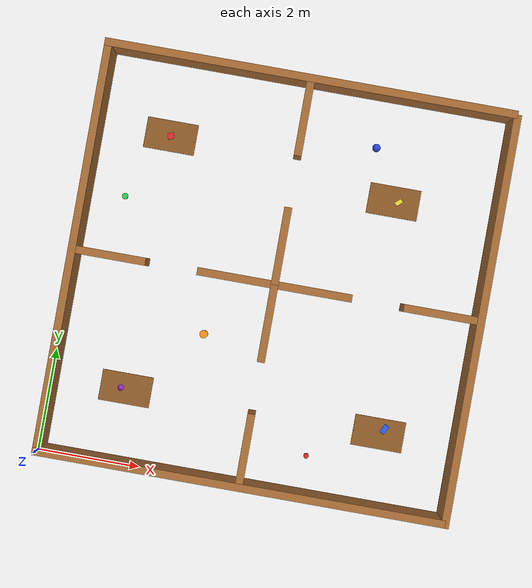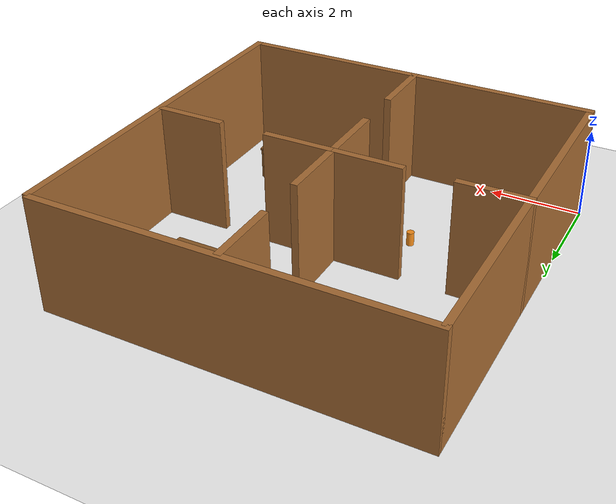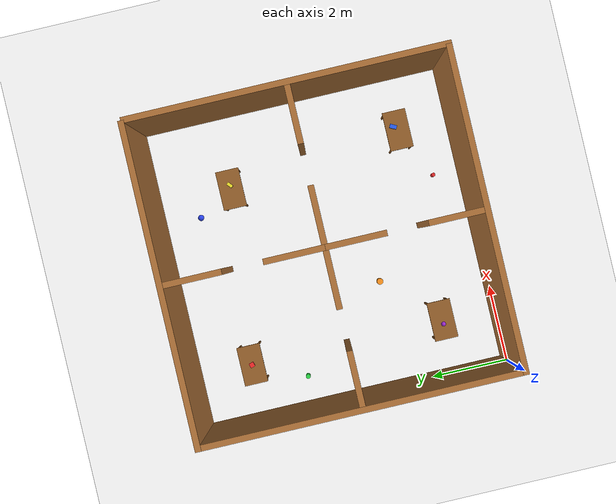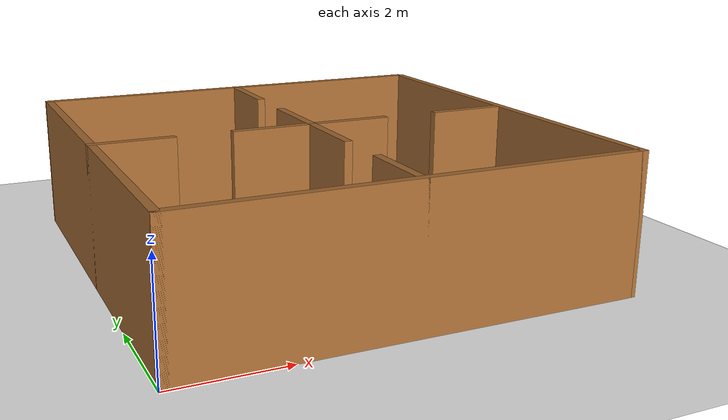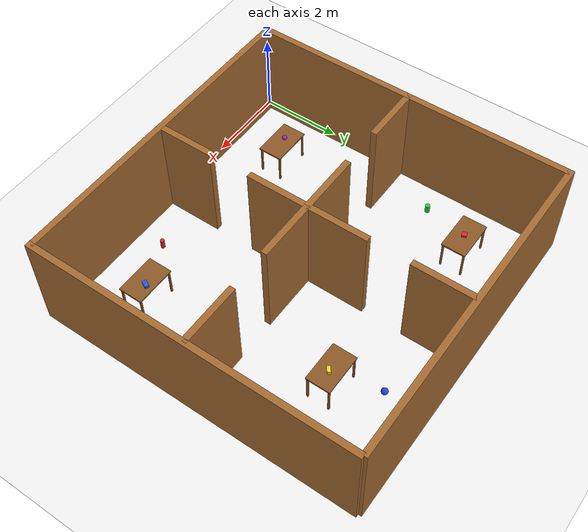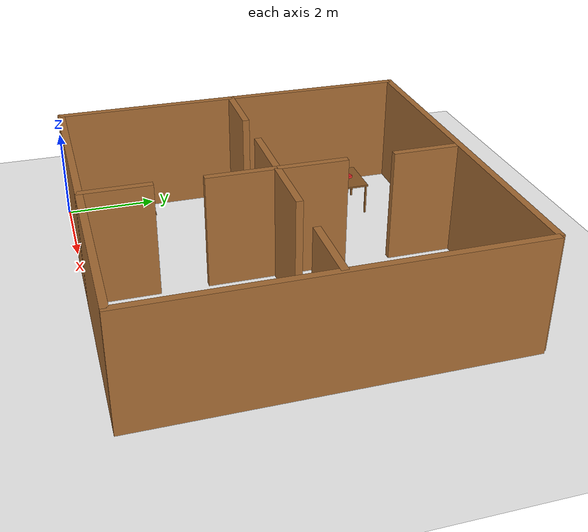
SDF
<?xml version="1.0" ?>
<sdf version="1.9">
  <world name="four_rooms">
    plugin filename="gz-sim-physics-system"
            name="gz::sim::systems::Physics"/>
    <plugin filename="gz-sim-sensors-system"
            name="gz::sim::systems::Sensors">
      <render_engine>ogre2</render_engine>
    </plugin>
    <plugin filename="gz-sim-scene-broadcaster-system"
            name="gz::sim::systems::SceneBroadcaster"/>
    <plugin filename="gz-sim-user-commands-system"
            name="gz::sim::systems::UserCommands"/>
    <!-- Physics -->
    <physics type="ode">
      <max_step_size>0.001</max_step_size>
      <real_time_factor>1.0</real_time_factor>
    </physics>

    <!-- Lighting -->
    <light type="directional" name="sun">
      <cast_shadows>true</cast_shadows>
      <pose>0 0 10 0 0 0</pose>
      <diffuse>0.8 0.8 0.8 1</diffuse>
      <direction>-0.5 0.1 -0.9</direction>
    </light>

    <!-- Ground plane -->
    <model name="ground_plane">
      <static>true</static>
      <link name="link">
        <collision name="collision">
          <geometry><plane><normal>0 0 1</normal></plane></geometry>
        </collision>
        <visual name="visual">
          <geometry><plane><normal>0 0 1</normal><size>100 100</size></plane></geometry>
          <material>
            <ambient>0.9 0.9 0.9 1</ambient>
            <diffuse>0.95 0.95 0.95 1</diffuse>
          </material>
        </visual>
      </link>
    </model>

    <!-- ==================== OUTER WALLS ==================== -->

    <model name="wall_north">
      <static>true</static>
      <pose>4 8 1.25 0 0 0</pose>
      <link name="link">
        <collision name="collision">
          <geometry><box><size>8 0.15 2.5</size></box></geometry>
        </collision>
        <visual name="visual">
          <geometry><box><size>8 0.15 2.5</size></box></geometry>
          <material>
            <ambient>0.55 0.35 0.17 1</ambient>
            <diffuse>0.65 0.42 0.20 1</diffuse>
            <specular>0.1 0.1 0.1 1</specular>
          </material>
        </visual>
      </link>
    </model>

    <model name="wall_south">
      <static>true</static>
      <pose>4 0.075 1.25 0 0 0</pose>
      <link name="link">
        <collision name="collision">
          <geometry><box><size>8 0.15 2.5</size></box></geometry>
        </collision>
        <visual name="visual">
          <geometry><box><size>8 0.15 2.5</size></box></geometry>
          <material>
            <ambient>0.55 0.35 0.17 1</ambient>
            <diffuse>0.65 0.42 0.20 1</diffuse>
            <specular>0.1 0.1 0.1 1</specular>
          </material>
        </visual>
      </link>
    </model>

    <model name="wall_west">
      <static>true</static>
      <pose>0.075 4 1.25 0 0 0</pose>
      <link name="link">
        <collision name="collision">
          <geometry><box><size>0.15 8 2.5</size></box></geometry>
        </collision>
        <visual name="visual">
          <geometry><box><size>0.15 8 2.5</size></box></geometry>
          <material>
            <ambient>0.55 0.35 0.17 1</ambient>
            <diffuse>0.65 0.42 0.20 1</diffuse>
            <specular>0.1 0.1 0.1 1</specular>
          </material>
        </visual>
      </link>
    </model>

    <model name="wall_east">
      <static>true</static>
      <pose>8 4 1.25 0 0 0</pose>
      <link name="link">
        <collision name="collision">
          <geometry><box><size>0.15 8 2.5</size></box></geometry>
        </collision>
        <visual name="visual">
          <geometry><box><size>0.15 8 2.5</size></box></geometry>
          <material>
            <ambient>0.55 0.35 0.17 1</ambient>
            <diffuse>0.65 0.42 0.20 1</diffuse>
            <specular>0.1 0.1 0.1 1</specular>
          </material>
        </visual>
      </link>
    </model>

    <!-- ==================== INTERIOR WALLS ==================== -->
    <!-- Vertical divider at X=4: doorways at Y=1.5-2.5 and Y=5.5-6.5 -->

    <model name="wall_room_3_4_lower">
      <static>true</static>
      <pose>4 0.75 1.25 0 0 0</pose>
      <link name="link">
        <collision name="collision">
          <geometry><box><size>0.15 1.5 2.5</size></box></geometry>
        </collision>
        <visual name="visual">
          <geometry><box><size>0.15 1.5 2.5</size></box></geometry>
          <material>
            <ambient>0.55 0.35 0.17 1</ambient>
            <diffuse>0.65 0.42 0.20 1</diffuse>
            <specular>0.1 0.1 0.1 1</specular>
          </material>
        </visual>
      </link>
    </model>

    <model name="wall_room_3_4_upper">
      <static>true</static>
      <pose>4 3.25 1.25 0 0 0</pose>
      <link name="link">
        <collision name="collision">
          <geometry><box><size>0.15 1.5 2.5</size></box></geometry>
        </collision>
        <visual name="visual">
          <geometry><box><size>0.15 1.5 2.5</size></box></geometry>
          <material>
            <ambient>0.55 0.35 0.17 1</ambient>
            <diffuse>0.65 0.42 0.20 1</diffuse>
            <specular>0.1 0.1 0.1 1</specular>
          </material>
        </visual>
      </link>
    </model>

    <model name="wall_room_1_2_lower">
      <static>true</static>
      <pose>4 4.75 1.25 0 0 0</pose>
      <link name="link">
        <collision name="collision">
          <geometry><box><size>0.15 1.5 2.5</size></box></geometry>
        </collision>
        <visual name="visual">
          <geometry><box><size>0.15 1.5 2.5</size></box></geometry>
          <material>
            <ambient>0.55 0.35 0.17 1</ambient>
            <diffuse>0.65 0.42 0.20 1</diffuse>
            <specular>0.1 0.1 0.1 1</specular>
          </material>
        </visual>
      </link>
    </model>

    <model name="wall_room_1_2_upper">
      <static>true</static>
      <pose>4 7.25 1.25 0 0 0</pose>
      <link name="link">
        <collision name="collision">
          <geometry><box><size>0.15 1.5 2.5</size></box></geometry>
        </collision>
        <visual name="visual">
          <geometry><box><size>0.15 1.5 2.5</size></box></geometry>
          <material>
            <ambient>0.55 0.35 0.17 1</ambient>
            <diffuse>0.65 0.42 0.20 1</diffuse>
            <specular>0.1 0.1 0.1 1</specular>
          </material>
        </visual>
      </link>
    </model>

    <!-- Horizontal divider at Y=4: doorways at X=1.5-2.5 and X=5.5-6.5 -->

    <model name="wall_room_1_3_left">
      <static>true</static>
      <pose>0.75 4 1.25 0 0 0</pose>
      <link name="link">
        <collision name="collision">
          <geometry><box><size>1.5 0.15 2.5</size></box></geometry>
        </collision>
        <visual name="visual">
          <geometry><box><size>1.5 0.15 2.5</size></box></geometry>
          <material>
            <ambient>0.55 0.35 0.17 1</ambient>
            <diffuse>0.65 0.42 0.20 1</diffuse>
            <specular>0.1 0.1 0.1 1</specular>
          </material>
        </visual>
      </link>
    </model>

    <model name="wall_room_1_3_right">
      <static>true</static>
      <pose>3.25 4 1.25 0 0 0</pose>
      <link name="link">
        <collision name="collision">
          <geometry><box><size>1.5 0.15 2.5</size></box></geometry>
        </collision>
        <visual name="visual">
          <geometry><box><size>1.5 0.15 2.5</size></box></geometry>
          <material>
            <ambient>0.55 0.35 0.17 1</ambient>
            <diffuse>0.65 0.42 0.20 1</diffuse>
            <specular>0.1 0.1 0.1 1</specular>
          </material>
        </visual>
      </link>
    </model>

    <model name="wall_room_2_4_left">
      <static>true</static>
      <pose>4.75 4 1.25 0 0 0</pose>
      <link name="link">
        <collision name="collision">
          <geometry><box><size>1.5 0.15 2.5</size></box></geometry>
        </collision>
        <visual name="visual">
          <geometry><box><size>1.5 0.15 2.5</size></box></geometry>
          <material>
            <ambient>0.55 0.35 0.17 1</ambient>
            <diffuse>0.65 0.42 0.20 1</diffuse>
            <specular>0.1 0.1 0.1 1</specular>
          </material>
        </visual>
      </link>
    </model>

    <model name="wall_room_2_4_right">
      <static>true</static>
      <pose>7.25 4 1.25 0 0 0</pose>
      <link name="link">
        <collision name="collision">
          <geometry><box><size>1.5 0.15 2.5</size></box></geometry>
        </collision>
        <visual name="visual">
          <geometry><box><size>1.5 0.15 2.5</size></box></geometry>
          <material>
            <ambient>0.55 0.35 0.17 1</ambient>
            <diffuse>0.65 0.42 0.20 1</diffuse>
            <specular>0.1 0.1 0.1 1</specular>
          </material>
        </visual>
      </link>
    </model>

    <!-- ==================== TABLES (one per room) ==================== -->

    <!-- Room 1 (top-left): center ~(1.5, 6.5) -->
    <include>
      <uri>model://table</uri>
      <name>table_room1</name>
      <pose>1.5 6.5 0 0 0 0</pose>
    </include>

    <!-- Room 2 (top-right): center ~(6.0, 6.0) -->
    <include>
      <uri>model://table</uri>
      <name>table_room2</name>
      <pose>6.0 6.0 0 0 0 0</pose>
    </include>

    <!-- Room 3 (bottom-left): center ~(1.5, 1.5) -->
    <include>
      <uri>model://table</uri>
      <name>table_room3</name>
      <pose>1.5 1.5 0 0 0 0</pose>
    </include>

    <!-- Room 4 (bottom-right): center ~(6.5, 1.5) -->
    <include>
      <uri>model://table</uri>
      <name>table_room4</name>
      <pose>6.5 1.5 0 0 0 0</pose>
    </include>

    <!-- ==================== RANDOM OBJECTS ==================== -->

    <!-- Room 1: red box on table -->
    <model name="obj_box_r1">
      <static>true</static>
      <pose>1.5 6.5 0.76 0 0 0.3</pose>
      <link name="link">
        <collision name="collision">
          <geometry><box><size>0.12 0.12 0.08</size></box></geometry>
        </collision>
        <visual name="visual">
          <geometry><box><size>0.12 0.12 0.08</size></box></geometry>
          <material>
            <ambient>0.8 0.1 0.1 1</ambient>
            <diffuse>0.9 0.15 0.15 1</diffuse>
          </material>
        </visual>
      </link>
    </model>

    <!-- Room 1: green cylinder on floor -->
    <model name="obj_cyl_r1">
      <static>true</static>
      <pose>0.8 5.2 0.1 0 0 0</pose>
      <link name="link">
        <collision name="collision">
          <geometry><cylinder><radius>0.06</radius><length>0.2</length></cylinder></geometry>
        </collision>
        <visual name="visual">
          <geometry><cylinder><radius>0.06</radius><length>0.2</length></cylinder></geometry>
          <material>
            <ambient>0.1 0.7 0.2 1</ambient>
            <diffuse>0.15 0.8 0.25 1</diffuse>
          </material>
        </visual>
      </link>
    </model>

    <!-- Room 2: blue sphere on floor -->
    <model name="obj_sphere_r2">
      <static>true</static>
      <pose>5.5 7.0 0.08 0 0 0</pose>
      <link name="link">
        <collision name="collision">
          <geometry><sphere><radius>0.08</radius></sphere></geometry>
        </collision>
        <visual name="visual">
          <geometry><sphere><radius>0.08</radius></sphere></geometry>
          <material>
            <ambient>0.1 0.2 0.8 1</ambient>
            <diffuse>0.15 0.25 0.9 1</diffuse>
          </material>
        </visual>
      </link>
    </model>

    <!-- Room 2: yellow box on table -->
    <model name="obj_box_r2">
      <static>true</static>
      <pose>6.1 6.0 0.78 0 0 0.7</pose>
      <link name="link">
        <collision name="collision">
          <geometry><box><size>0.15 0.08 0.1</size></box></geometry>
        </collision>
        <visual name="visual">
          <geometry><box><size>0.15 0.08 0.1</size></box></geometry>
          <material>
            <ambient>0.8 0.75 0.1 1</ambient>
            <diffuse>0.9 0.85 0.15 1</diffuse>
          </material>
        </visual>
      </link>
    </model>

    <!-- Room 3: orange cylinder on floor -->
    <model name="obj_cyl_r3">
      <static>true</static>
      <pose>2.8 2.8 0.15 0 0 0</pose>
      <link name="link">
        <collision name="collision">
          <geometry><cylinder><radius>0.08</radius><length>0.3</length></cylinder></geometry>
        </collision>
        <visual name="visual">
          <geometry><cylinder><radius>0.08</radius><length>0.3</length></cylinder></geometry>
          <material>
            <ambient>0.85 0.45 0.05 1</ambient>
            <diffuse>0.95 0.55 0.1 1</diffuse>
          </material>
        </visual>
      </link>
    </model>

    <!-- Room 3: purple sphere on table -->
    <model name="obj_sphere_r3">
      <static>true</static>
      <pose>1.4 1.5 0.78 0 0 0</pose>
      <link name="link">
        <collision name="collision">
          <geometry><sphere><radius>0.06</radius></sphere></geometry>
        </collision>
        <visual name="visual">
          <geometry><sphere><radius>0.06</radius></sphere></geometry>
          <material>
            <ambient>0.5 0.1 0.7 1</ambient>
            <diffuse>0.6 0.15 0.8 1</diffuse>
          </material>
        </visual>
      </link>
    </model>

    <!-- Room 4: red cylinder on floor -->
    <model name="obj_cyl_r4">
      <static>true</static>
      <pose>5.2 0.8 0.12 0 0 0</pose>
      <link name="link">
        <collision name="collision">
          <geometry><cylinder><radius>0.05</radius><length>0.24</length></cylinder></geometry>
        </collision>
        <visual name="visual">
          <geometry><cylinder><radius>0.05</radius><length>0.24</length></cylinder></geometry>
          <material>
            <ambient>0.75 0.1 0.1 1</ambient>
            <diffuse>0.85 0.15 0.15 1</diffuse>
          </material>
        </visual>
      </link>
    </model>

    <!-- Room 4: blue box on table, rotated -->
    <model name="obj_box_r4">
      <static>true</static>
      <pose>6.6 1.6 0.77 0 0 1.1</pose>
      <link name="link">
        <collision name="collision">
          <geometry><box><size>0.18 0.10 0.06</size></box></geometry>
        </collision>
        <visual name="visual">
          <geometry><box><size>0.18 0.10 0.06</size></box></geometry>
          <material>
            <ambient>0.1 0.3 0.8 1</ambient>
            <diffuse>0.15 0.35 0.9 1</diffuse>
          </material>
        </visual>
      </link>
    </model>

  </world>
</sdf>

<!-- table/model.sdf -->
<sdf version="1.9">
  <model name="table">
    <static>true</static>

    <!-- Tabletop: 1.0 x 0.6 x 0.04, surface at z=0.74 -->
    <link name="tabletop">
      <pose>0 0 0.72 0 0 0</pose>
      <collision name="collision">
        <geometry>
          <box><size>1.0 0.6 0.04</size></box>
        </geometry>
      </collision>
      <visual name="visual">
        <geometry>
          <box><size>1.0 0.6 0.04</size></box>
        </geometry>
        <material>
          <ambient>0.45 0.28 0.12 1</ambient>
          <diffuse>0.55 0.35 0.15 1</diffuse>
          <specular>0.1 0.1 0.1 1</specular>
        </material>
      </visual>
    </link>

    <!-- Legs: 0.04 x 0.04 x 0.70, inset 0.04m from edges -->
    <link name="leg_front_left">
      <pose>-0.46 -0.26 0.35 0 0 0</pose>
      <collision name="collision">
        <geometry>
          <box><size>0.04 0.04 0.70</size></box>
        </geometry>
      </collision>
      <visual name="visual">
        <geometry>
          <box><size>0.04 0.04 0.70</size></box>
        </geometry>
        <material>
          <ambient>0.45 0.28 0.12 1</ambient>
          <diffuse>0.55 0.35 0.15 1</diffuse>
          <specular>0.1 0.1 0.1 1</specular>
        </material>
      </visual>
    </link>

    <link name="leg_front_right">
      <pose>0.46 -0.26 0.35 0 0 0</pose>
      <collision name="collision">
        <geometry>
          <box><size>0.04 0.04 0.70</size></box>
        </geometry>
      </collision>
      <visual name="visual">
        <geometry>
          <box><size>0.04 0.04 0.70</size></box>
        </geometry>
        <material>
          <ambient>0.45 0.28 0.12 1</ambient>
          <diffuse>0.55 0.35 0.15 1</diffuse>
          <specular>0.1 0.1 0.1 1</specular>
        </material>
      </visual>
    </link>

    <link name="leg_back_left">
      <pose>-0.46 0.26 0.35 0 0 0</pose>
      <collision name="collision">
        <geometry>
          <box><size>0.04 0.04 0.70</size></box>
        </geometry>
      </collision>
      <visual name="visual">
        <geometry>
          <box><size>0.04 0.04 0.70</size></box>
        </geometry>
        <material>
          <ambient>0.45 0.28 0.12 1</ambient>
          <diffuse>0.55 0.35 0.15 1</diffuse>
          <specular>0.1 0.1 0.1 1</specular>
        </material>
      </visual>
    </link>

    <link name="leg_back_right">
      <pose>0.46 0.26 0.35 0 0 0</pose>
      <collision name="collision">
        <geometry>
          <box><size>0.04 0.04 0.70</size></box>
        </geometry>
      </collision>
      <visual name="visual">
        <geometry>
          <box><size>0.04 0.04 0.70</size></box>
        </geometry>
        <material>
          <ambient>0.45 0.28 0.12 1</ambient>
          <diffuse>0.55 0.35 0.15 1</diffuse>
          <specular>0.1 0.1 0.1 1</specular>
        </material>
      </visual>
    </link>

  </model>
</sdf>
